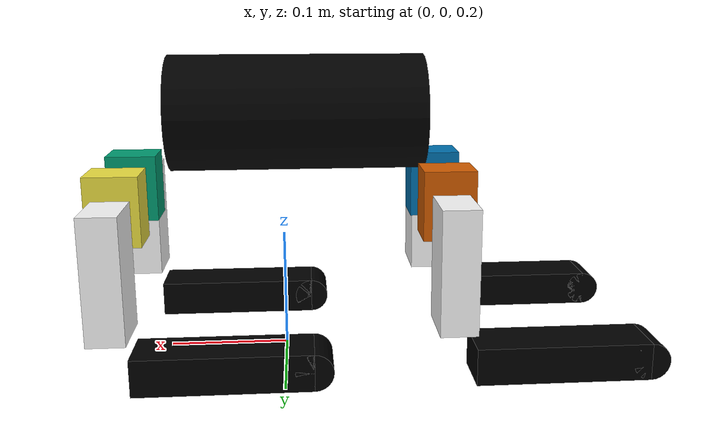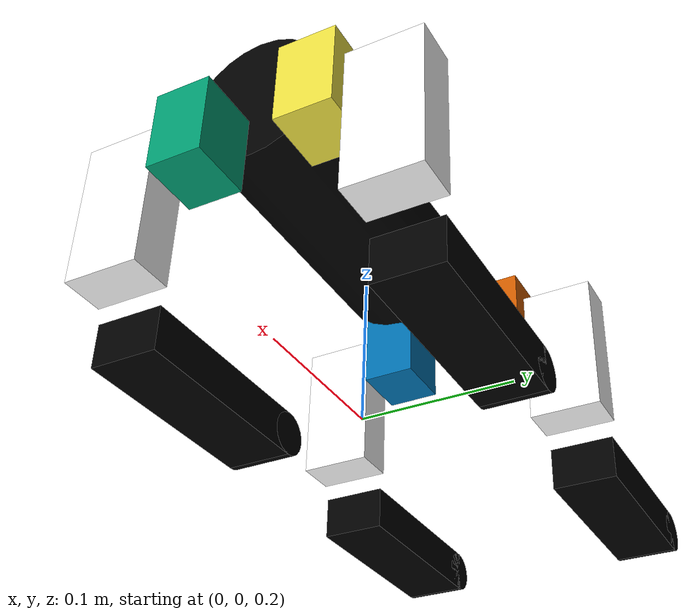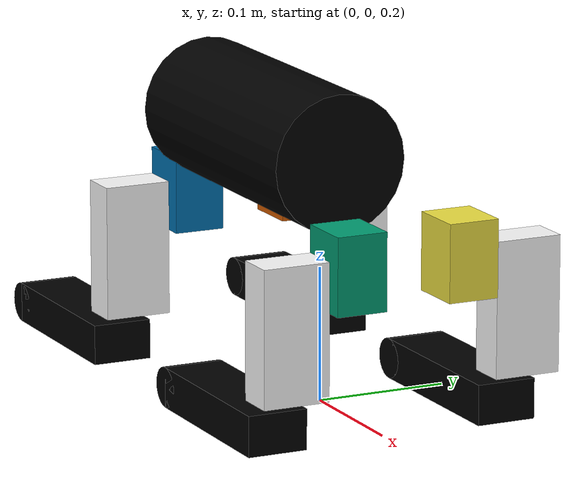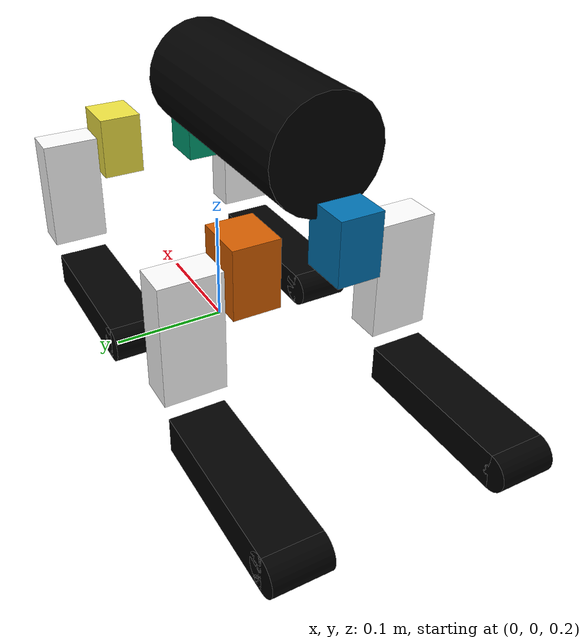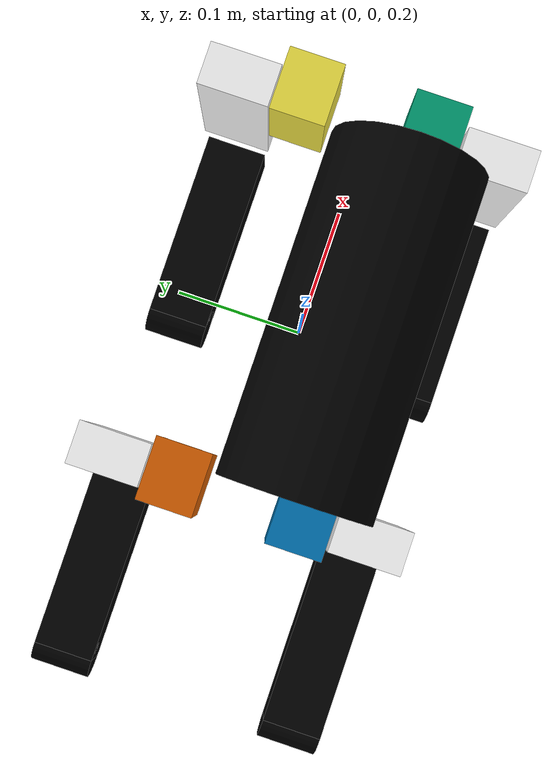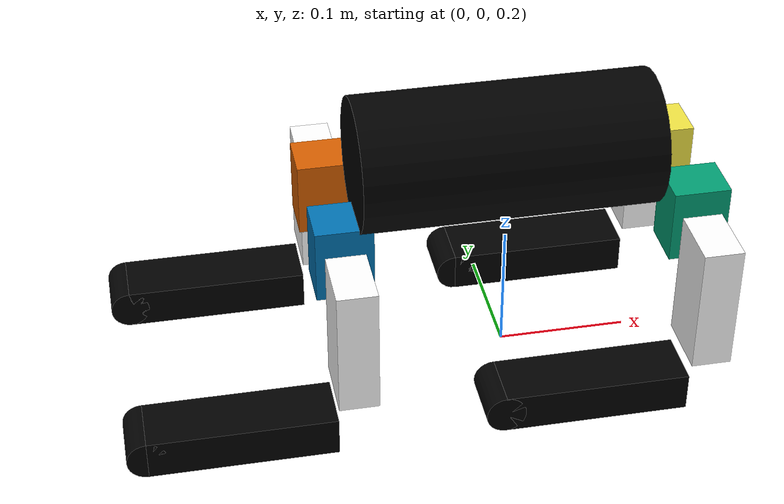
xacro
<?xml version="1.0"?>
<robot xmlns:xacro="http://www.ros.org/wiki/xacro" name="spot_quadruped">

    <xacro:include filename="material.xacro"/>

    <xacro:include filename="spot_core.xacro"/>

    <xacro:include filename="gazebo.xacro"/>

    <xacro:include filename="ros2_control.xacro"/>

</robot>

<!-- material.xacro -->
<robot xmlns:xacro="http://www.ros.org/wiki/xacro" >

    <material name="red">
        <color rgba="1 0 0 1"/>
    </material>

    <material name="green">
        <color rgba="0 1 0 1"/>
    </material>

    <material name="blue">
        <color rgba="0 0 1 1"/>
    </material>

    <material name="white">
        <color rgba="1 1 1 1"/>
    </material>

    <material name="black">
        <color rgba="0 0 0 1"/>
    </material>

    <material name="orange">
        <color rgba="1 0.65 0 1"/>
    </material>

    <material name="yellow">
        <color rgba="1 1 0 1"/>
    </material>

    <xacro:property name="PI" value="3.14159" />
    <xacro:property name="effort" value="30.0" />
    <xacro:property name="velocity" value="10.0" />

    <xacro:macro name="default_inertial" params="mass">
        <inertial>
            <mass value="${mass}" />
            <inertia ixx="0.01" ixy="0.0" ixz="0.0"
                     iyy="0.01" iyz="0.0"
                     izz="0.01" />
        </inertial>
    </xacro:macro>

    <xacro:macro name="box_inertia" params="m l w h xyz rpy">
        <inertial>
            <origin xyz="${xyz}" rpy="${rpy}" />
            <mass value="${m}" />
            <inertia ixx="${(m/12) * (h*h + l*l)}" ixy="0" ixz="0"
                     iyy="${(m/12) * (w*w + l*l)}" iyz="0"
                     izz="${(m/12) * (w*w + h*h)}" />
        </inertial>
    </xacro:macro>

    <xacro:macro name="cylinder_inertia" params="m r h xyz rpy">
        <inertial>
            <origin xyz="${xyz}" rpy="${rpy}" />
            <mass value="${m}" />
            <inertia ixx="${(m/12) * (3*r*r + h*h)}" ixy="0" ixz="0"
                     iyy="${(m/12) * (3*r*r + h*h)}" iyz="0"
                     izz="${(m/2) * (r*r)}" />
        </inertial>
    </xacro:macro>

    <xacro:macro name="sphere_inertia" params="m r xyz rpy">
        <inertial>
            <origin xyz="${xyz}" rpy="${rpy}" />
            <mass value="${m}" />
            <inertia ixx="${(2/5) * m * r * r}" ixy="0" ixz="0"
                     iyy="${(2/5) * m * r * r}" iyz="0"
                     izz="${(2/5) * m * r * r}" />
        </inertial>
    </xacro:macro>

</robot>

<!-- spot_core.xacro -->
<robot xmlns:xacro="http://www.ros.org/wiki/xacro">

    <xacro:property name="body_length" value="0.22"/>
    <xacro:property name="body_width" value="0.12"/>
    <xacro:property name="body_height" value="0.1"/>

    <xacro:property name="shoulder_length" value="0.043"/>
    <xacro:property name="shoulder_width" value="0.038"/>
    <xacro:property name="shoulder_height" value="0.057"/>

    <xacro:property name="bein_length" value="0.1"/>
    <xacro:property name="bein_width" value="0.05"/>
    <xacro:property name="bein_height" value="0.03"/>

    <xacro:property name="fuss_length" value="0.14"/>
    <xacro:property name="fuss_width" value="0.045"/>
    <xacro:property name="fuss_height" value="0.03"/>
    <xacro:property name="fuss_ballen" value="0.015"/>
    <xacro:property name="scale" value="0.001 0.001 0.001"/>

    <link name="base_footprint"/>

    <link name="base_link">
        <visual>
            <origin xyz="-0.013 -0.0325 0.125" rpy="0.0 ${pi/2} 0.0"/>
            <geometry>
               <cylinder radius="${body_height/2}" length="${body_length}"/>
            </geometry>
            <material name="black"/>
        </visual>
        <collision>
            <origin xyz="0.0 0.0 ${body_width/2}" rpy="0.0 ${pi/2} 0.0 "/>
            <geometry>
                <cylinder radius="${body_height/2}" length="${body_length}"/>
            </geometry>
        </collision>
        <xacro:cylinder_inertia m="0.5" r="${body_height/2}" h="${body_length}"
                           xyz="0 0 0" rpy="0 0 0"/>

    </link>

    <joint name="virtuel_joint" type="fixed">
        <parent link="base_footprint"/>
        <child link="base_link"/>
        <origin xyz="0.0 0.0 0.275" rpy="0.0 0.0 0.0"/>
    </joint>

        <!-- Schulter body-->
    <xacro:macro name="schulter" params="prefix">
        <link name="${prefix}_schulter_link">
        <visual>
            <origin xyz="0.0 0.0 0.0" rpy="0.0 0.0 0.0"/>
            <geometry>
                <box size="${shoulder_length} ${shoulder_width} ${shoulder_height}"/>
            </geometry>
        </visual>
        <collision>
            <origin xyz="0.0 0.0 0.0" rpy="0.0 0.0 0.0"/>
            <geometry>
                <box size="${shoulder_length} ${shoulder_width} ${shoulder_height}"/>
            </geometry>
        </collision>
        <xacro:box_inertia m="0.1" l="${shoulder_length}" w="${shoulder_width}" h="${shoulder_height}"
                           xyz="0 0 0" rpy="0 0 0"/>

    </link>

    </xacro:macro>

    <xacro:schulter prefix="front_r" />
    <xacro:schulter prefix="front_l" />

    <xacro:schulter prefix="heck_r" />
    <xacro:schulter prefix="heck_l" />

        <!-- Bein body -->
    <xacro:macro name="bein" params="prefix">
        <link name="${prefix}_bein_link">
        <visual>
            <origin xyz="-0.03 0.0 0.0" rpy="0.0 0.0 0.0"/>
            <geometry>
                <box size="${bein_length}  ${bein_width} ${bein_height}"/>
            </geometry>
            <material name="white"/>
        </visual>
        <collision>
            <origin xyz="-0.03 0.0 0.0" rpy="0.0 0.0 0.0"/>
            <geometry>
                <box size="${bein_length}  ${bein_width} ${bein_height}"/>
            </geometry>
        </collision>
        <xacro:box_inertia m="0.1" l="${bein_length}" w="${bein_width}" h="${bein_height}"
                           xyz="0 0 0" rpy="0 0 0"/>

    </link>

    </xacro:macro>

    <xacro:bein prefix="front_r" />
    <xacro:bein prefix="front_l" />

    <xacro:bein prefix="heck_r" />
    <xacro:bein prefix="heck_l" />

        <!-- Fuss body -->
    <xacro:macro name="fuss" params="prefix">
        <link name="${prefix}_fuss_link">
        <visual>
            <origin xyz="0.055 0.0 0.0" rpy="0.0 0.0 0.0"/>
            <geometry>
                <box size="${fuss_length}  ${fuss_width} ${fuss_height}"/>
            </geometry>
            <material name="black"/>
        </visual>
        <collision>
            <origin xyz="0.055 0.0 0.0" rpy="0.0 0.0 0.0"/>
            <geometry>
                <box size="${fuss_length}  ${fuss_width} ${fuss_height}"/>
            </geometry>
        </collision>
        <xacro:box_inertia m="0.1" l="${fuss_length}" w="${fuss_width}" h="${fuss_height}"
                           xyz="0 0 0" rpy="0 0 0"/>

    </link>

    </xacro:macro>

    <xacro:fuss prefix="front_r" />
    <xacro:fuss prefix="front_l" />

    <xacro:fuss prefix="heck_r" />
    <xacro:fuss prefix="heck_l" />

        <!-- Fuss endpoint -->
    <xacro:macro name="fussb" params="prefix">
        <link name="${prefix}_fuss_ballen_link">
        <visual>
            <origin xyz="-0.015 0.0 0.0" rpy="${pi/2} 0.0 0.0"/>
            <geometry>
                <cylinder radius="${fuss_ballen}" length="${fuss_width}"/>
            </geometry>
            <material name="black"/>
        </visual>
        <collision>
            <origin xyz="-0.015 0.0 0.0" rpy="${pi/2} 0.0 0.0"/>
            <geometry>
                <cylinder radius="${fuss_ballen}" length="${fuss_width}"/>
            </geometry>
        </collision>
        <xacro:cylinder_inertia m="0.01" r="${fuss_ballen}" h="${fuss_width}"
                           xyz="0 0 0" rpy="0 0 0"/>

    </link>

    </xacro:macro>

    <xacro:fussb prefix="front_r" />
    <xacro:fussb prefix="front_l" />

    <xacro:fussb prefix="heck_r" />
    <xacro:fussb prefix="heck_l" />

    <!-- JOINTS-->

    <!-- TRANSMISSION -->
    <xacro:macro name="default_transmission" params="number">
        <transmission name="transmission_${number}" >
            <plugin>transmission_interface/SimpleTransmission</plugin>
            <actuator name="motor_${number}" roll="actuator1"/>
            <joint name="joint_${number}" roll="joint1">
                <mechanical_reduction>1.0</mechanical_reduction>

            </joint>
        </transmission>
    </xacro:macro>

        <!-- Front Rechts-->

    <joint name="joint_0" type="revolute">
        <parent link="base_link"/>
        <child link="front_r_schulter_link"/>
        <axis xyz="-1 0 0"/>
        <limit lower="${-pi/4}" upper="${pi/4}" velocity="50.0" effort="1000.0"/>
        <origin xyz="0.132 -0.0435 ${body_width/2}" rpy="0 0 0"/>
    </joint>

    <joint name="joint_1" type="revolute">
        <parent link="front_r_schulter_link"/>
        <child link="front_r_bein_link"/>
        <axis xyz="0 -1 0"/>
        <limit lower="${-pi/4}" upper="${pi/4}" velocity="50.0" effort="1000.0"/>
        <origin xyz="0.0 -${shoulder_width/2 + bein_width/2 + 0.003} -0.01" rpy="0 ${-pi/2} 0"/>
    </joint>

    <joint name="joint_2" type="revolute">
        <parent link="front_r_bein_link"/>
        <child link="front_r_fuss_link"/>
        <axis xyz="0 1 0"/>
        <limit lower="${-pi/4}" upper="${pi/4}" velocity="50.0" effort="1000.0"/>
        <origin xyz="-0.107 0.0 0.03" rpy="0 ${-pi/2} 0"/>
    </joint>

    <joint name="rechter_fuss_F_endpoint" type="fixed">
        <parent link="front_r_fuss_link"/>
        <child link="front_r_fuss_ballen_link"/>
        <origin xyz="0.14 0.0 0.0" rpy="0.0 0.0 0.0"/>
    </joint>

        <!-- Front Links-->

    <joint name="joint_3" type="revolute">
        <parent link="base_link"/>
        <child link="front_l_schulter_link"/>
        <axis xyz="1 0 0"/>
        <limit lower="${-pi/4}" upper="${pi/4}" velocity="50.0" effort="1000.0"/>
        <origin xyz="0.132 0.0435 ${body_width/2}" rpy="0 0 0"/>
    </joint>

    <joint name="joint_4" type="revolute">
        <parent link="front_l_schulter_link"/>
        <child link="front_l_bein_link"/>
        <axis xyz="0 -1 0"/>
        <limit lower="${-pi/4}" upper="${pi/4}" velocity="50.0" effort="1000.0"/>
        <origin xyz="0.0 ${shoulder_width/2 + bein_width/2 + 0.003} -0.01" rpy="0 ${-pi/2} 0"/>
    </joint>

    <joint name="joint_5" type="revolute">
        <parent link="front_l_bein_link"/>
        <child link="front_l_fuss_link"/>
        <axis xyz="0 1 0"/>
        <limit lower="${-pi/4}" upper="${pi/4}" velocity="50.0" effort="1000.0"/>
        <origin xyz="-0.107 0.0 0.03" rpy="0 ${-pi/2} 0"/>
    </joint>

    <joint name="linker_fuss_F_endpoint" type="fixed">
        <parent link="front_l_fuss_link"/>
        <child link="front_l_fuss_ballen_link"/>
        <origin xyz="0.14 0.0 0.0" rpy="0.0 0.0 0.0"/>
    </joint>

        <!-- Heck Rechts-->

    <joint name="joint_6" type="revolute">
        <parent link="base_link"/>
        <child link="heck_r_schulter_link"/>
        <axis xyz="-1 0 0"/>
        <limit lower="${-pi/4}" upper="${pi/4}" velocity="50.0" effort="1000.0"/>
        <origin xyz="-0.134 -0.0435 ${body_width/2}" rpy="0 0 0"/>
    </joint>

    <joint name="joint_7" type="revolute">
        <parent link="heck_r_schulter_link"/>
        <child link="heck_r_bein_link"/>
        <axis xyz="0 -1 0"/>
        <limit lower="${-pi/4}" upper="${pi/4}" velocity="50.0" effort="1000.0"/>
        <origin xyz="0.0 -${shoulder_width/2 + bein_width/2 + 0.003} -0.01" rpy="0 ${-pi/2} 0"/>
    </joint>

    <joint name="joint_8" type="revolute">
        <parent link="heck_r_bein_link"/>
        <child link="heck_r_fuss_link"/>
        <axis xyz="0 1 0"/>
        <limit lower="${-pi/4}" upper="${pi/4}" velocity="50.0" effort="1000.0"/>
        <origin xyz="-0.107 0.0 0.03" rpy="0 ${-pi/2} 0"/>
    </joint>

    <joint name="rechter_fuss_H_endpoint" type="fixed">
        <parent link="heck_r_fuss_link"/>
        <child link="heck_r_fuss_ballen_link"/>
        <origin xyz="0.14 0.0 0.0" rpy="0.0 0.0 0.0"/>
    </joint>

        <!-- Heck Links-->

    <joint name="joint_9" type="revolute">
        <parent link="base_link"/>
        <child link="heck_l_schulter_link"/>
        <axis xyz="1 0 0"/>
        <limit lower="${-pi/4}" upper="${pi/4}" velocity="50.0" effort="1000.0"/>
        <origin xyz="-0.134 0.0435 ${body_width/2}" rpy="0 0 0"/>
    </joint>

    <joint name="joint_10" type="revolute">
        <parent link="heck_l_schulter_link"/>
        <child link="heck_l_bein_link"/>
        <axis xyz="0 -1 0"/>
        <limit lower="${-pi/4}" upper="${pi/4}" velocity="50.0" effort="1000.0"/>
        <origin xyz="0.0 ${shoulder_width/2 + bein_width/2 + 0.003} -0.01" rpy="0 ${-pi/2} 0"/>
    </joint>

    <joint name="joint_11" type="revolute">
        <parent link="heck_l_bein_link"/>
        <child link="heck_l_fuss_link"/>
        <axis xyz="0 1 0"/>
        <limit lower="${-pi/4}" upper="${pi/4}" velocity="50.0" effort="1000.0"/>
        <origin xyz="-0.107 0.0 0.03" rpy="0 ${-pi/2} 0"/>
    </joint>

    <joint name="linker_fuss_H_endpoint" type="fixed">
        <parent link="heck_l_fuss_link"/>
        <child link="heck_l_fuss_ballen_link"/>
        <origin xyz="0.14 0.0 0.0" rpy="0.0 0.0 0.0"/>
    </joint>

    <xacro:default_transmission number="0"/>
    <xacro:default_transmission number="1"/>
    <xacro:default_transmission number="2"/>

    <xacro:default_transmission number="3"/>
    <xacro:default_transmission number="4"/>
    <xacro:default_transmission number="5"/>

    <xacro:default_transmission number="6"/>
    <xacro:default_transmission number="7"/>
    <xacro:default_transmission number="8"/>

    <xacro:default_transmission number="9"/>
    <xacro:default_transmission number="10"/>
    <xacro:default_transmission number="11"/>

</robot>
